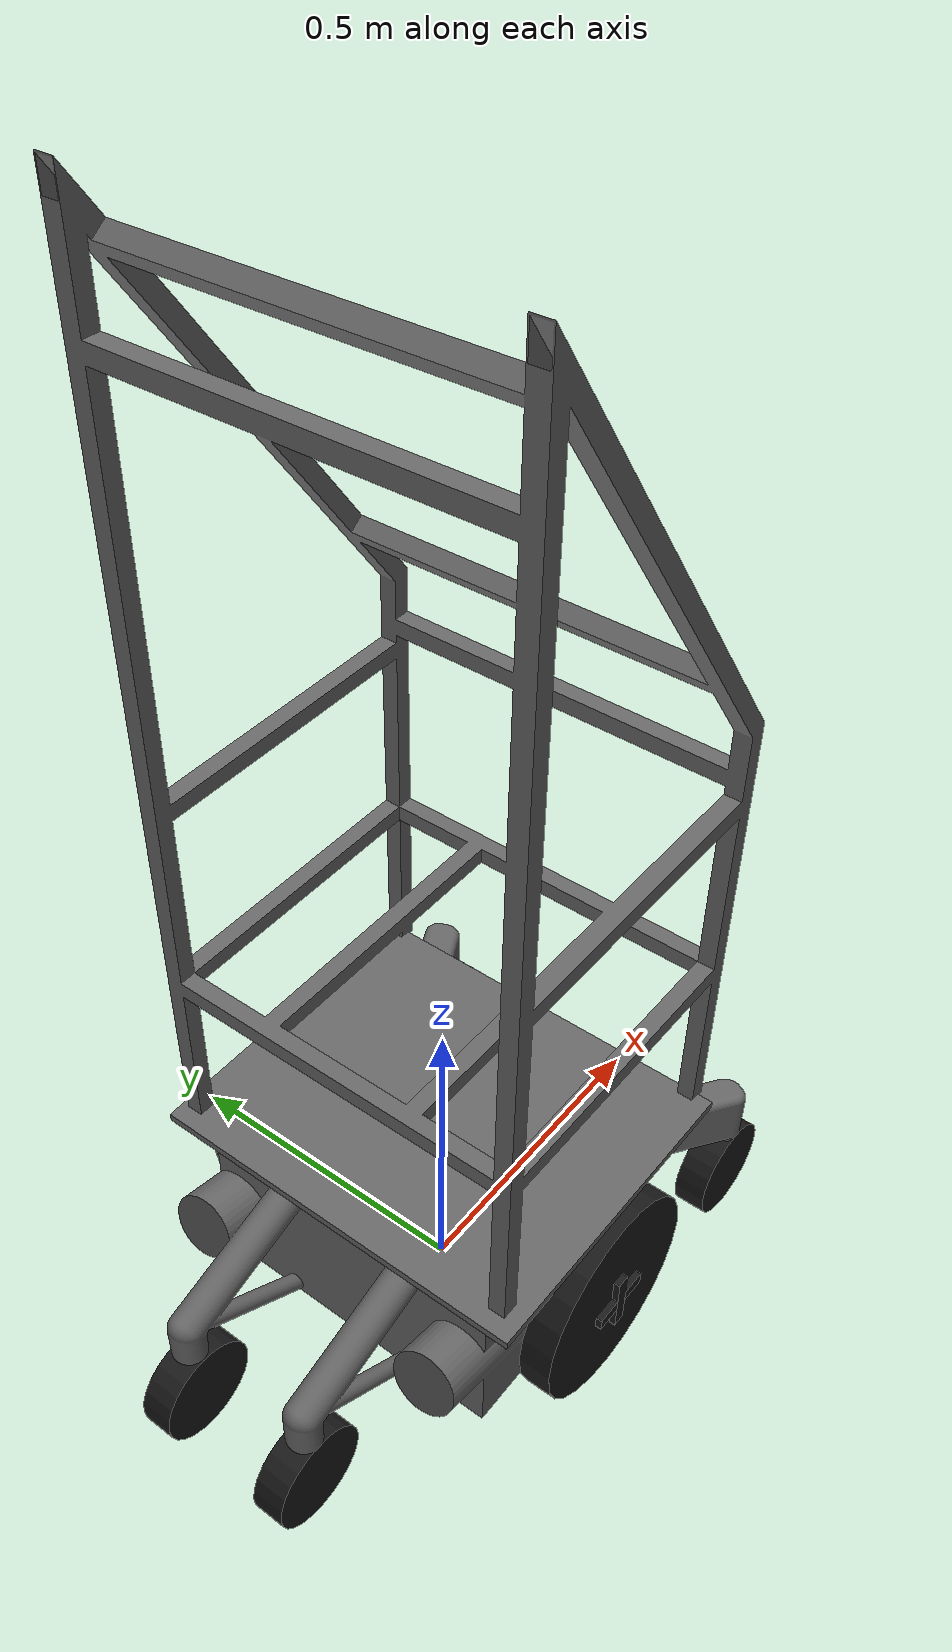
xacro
<?xml version="1.0"?>

<robot name="mantis" xmlns:xacro="http://www.ros.org/wiki/xacro" >

  <xacro:include filename="$(find mantis_model)/urdf/mantis_gazebo.urdf" />
  <xacro:include filename="$(find mantis_model)/urdf/mantis_control.urdf" />

  <xacro:property name="front_caster_x" value="0.36" />
  <xacro:property name="front_caster_y" value="0.275" />
  <xacro:property name="rear_caster_x" value="-0.435" />
  <xacro:property name="rear_caster_y" value="0.105" />
  <xacro:property name="frame_height" value="0.18" />
  <xacro:property name="wheel_radius" value="0.165" />
  <xacro:property name="caster_radius" value="0.08" />
  <xacro:property name="drive_wheel_offset" value="0.29" />

  <xacro:macro name="drive_wheel" params="side reflecty" >
    <link name="${side}_wheel" >
      <visual>
        <geometry>
          <cylinder length="0.05" radius="${wheel_radius}" />
        </geometry>
        <material name="dark_gray" />
      </visual>
      <visual>
        <geometry>
          <box size="0.02 0.1 0.07" />
        </geometry>
        <material name="dark_gray" />
      </visual>
      <visual>
        <geometry>
          <box size="0.1 0.02 0.07" />
        </geometry>
        <material name="dark_gray" />
      </visual>

      <collision>
        <geometry>
          <cylinder length="0.05" radius="${wheel_radius}" />
        </geometry>
      </collision>

      <inertial>
        <mass value="1.0" />
        <inertia ixx="1.0" ixy="0.0" ixz="0.0" iyy="1.0" iyz="0.0" izz="1.0" />
      </inertial>
    </link>

    <joint name="${side}_wheel_joint" type="continuous" >
      <parent link="base_link" />
      <child link="${side}_wheel" />
      <origin xyz="0 ${reflecty * drive_wheel_offset} 0" rpy="-1.5707 0 0" />
      <axis xyz="0 0 1" />
    </joint>
  </xacro:macro>

  <xacro:macro name="caster_wheel" params="name x_offset y_offset" >
    <link name="${name}_caster" >
      <visual>
        <geometry>
          <cylinder length="0.05" radius="${caster_radius}" />
        </geometry>
        <material name="dark_gray" />
      </visual>

      <collision>
        <geometry>
          <cylinder length="0.05" radius="${caster_radius}" />
        </geometry>
      </collision>

      <inertial>
        <mass value="1.0" />
        <inertia ixx="1.0" ixy="0.0" ixz="0.0" iyy="1.0" iyz="0.0" izz="1.0" />
      </inertial>
    </link>

    <joint name="${name}_caster_joint" type="fixed" >
      <parent link="base_link" />
      <child link="${name}_caster" />
      <origin xyz="${x_offset} ${y_offset} ${caster_radius - wheel_radius}" rpy="-1.5707 0 0" />
    </joint>
  </xacro:macro>

  <xacro:drive_wheel side="left" reflecty="1" />
  <xacro:drive_wheel side="right" reflecty="-1" />
  <xacro:caster_wheel name="fl" x_offset="${front_caster_x}" y_offset="${front_caster_y}" />
  <xacro:caster_wheel name="fr" x_offset="${front_caster_x}" y_offset="${-front_caster_y}" />
  <xacro:caster_wheel name="rl" x_offset="${rear_caster_x}" y_offset="${rear_caster_y}" />
  <xacro:caster_wheel name="rr" x_offset="${rear_caster_x}" y_offset="${-rear_caster_y}" />

  <link name="base_footprint" >
    <inertial>
      <mass value="1.0" />
      <inertia ixx="1.0" ixy="0.0" ixz="0.0" iyy="1.0" iyz="0.0" izz="1.0" />
    </inertial>
  </link>

  <link name="base_link" >
    <visual>
      <origin xyz="0 0 0" rpy="0 0 0" />
      <geometry>
        <mesh filename="package://mantis_model/meshes/mantis_base.stl" scale="1 1 1" />
      </geometry>
      <material name="gray" />
    </visual>
    <visual>
      <origin xyz="0 0 ${frame_height}" rpy="0 0 0" />
      <geometry>
        <mesh filename="package://mantis_model/meshes/mantis_frame.stl" scale="1 1 1" />
      </geometry>
      <material name="gray" />
    </visual>
    <visual>
      <origin xyz="0 0 ${frame_height}" rpy="0 0 0" />
      <geometry>
        <box size="0.5 0.6 0.0127" />
      </geometry>
      <material name="gray" />
    </visual>

    <collision>
      <geometry>
        <mesh filename="package://mantis_model/meshes/mantis_base.stl" scale="1 1 1" />
      </geometry>
    </collision>

    <collision>
      <geometry>
        <mesh filename="package://mantis_model/meshes/mantis_frame.stl" scale="1 1 1" />
      </geometry>
    </collision>

    <inertial>
      <mass value="10.0" />
      <inertia ixx="10.0" ixy="0.0" ixz="0.0" iyy="10.0" iyz="0.0" izz="10.0" />
    </inertial>
  </link>

  <joint name="base_joint" type="fixed" >
    <parent link="base_footprint" />
    <child link="base_link" />
    <origin xyz="0 0 ${wheel_radius}" rpy="0 0 0" />
  </joint>

  <material name="gray" >
    <color rgba="0.4 0.4 0.4 1.0" />
  </material>

  <material name="dark_gray" >
    <color rgba="0.1 0.1 0.1 1.0" />
  </material>

</robot>
